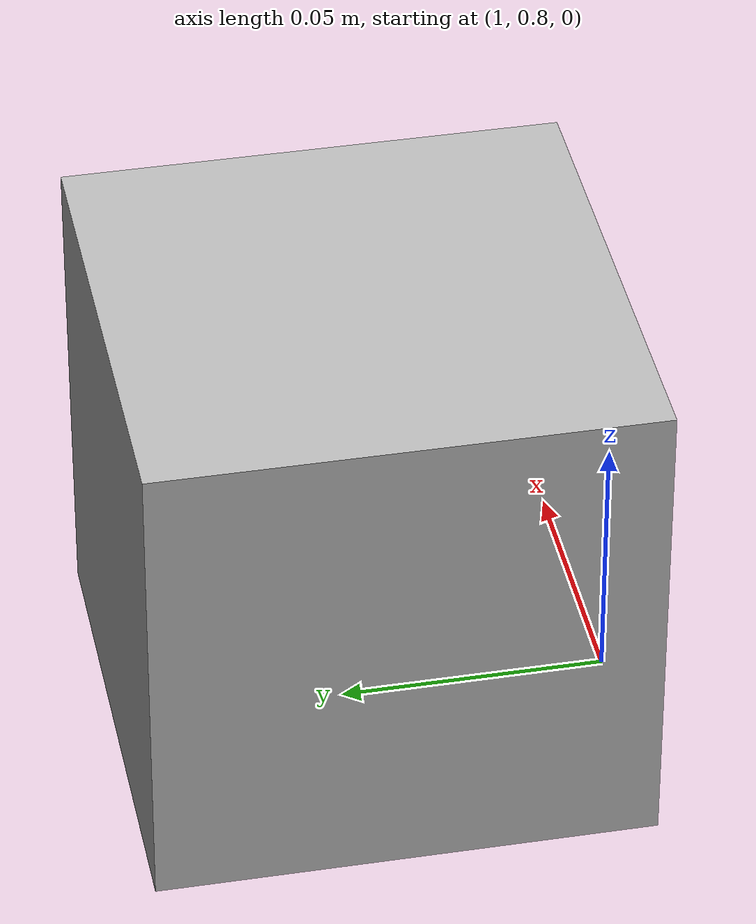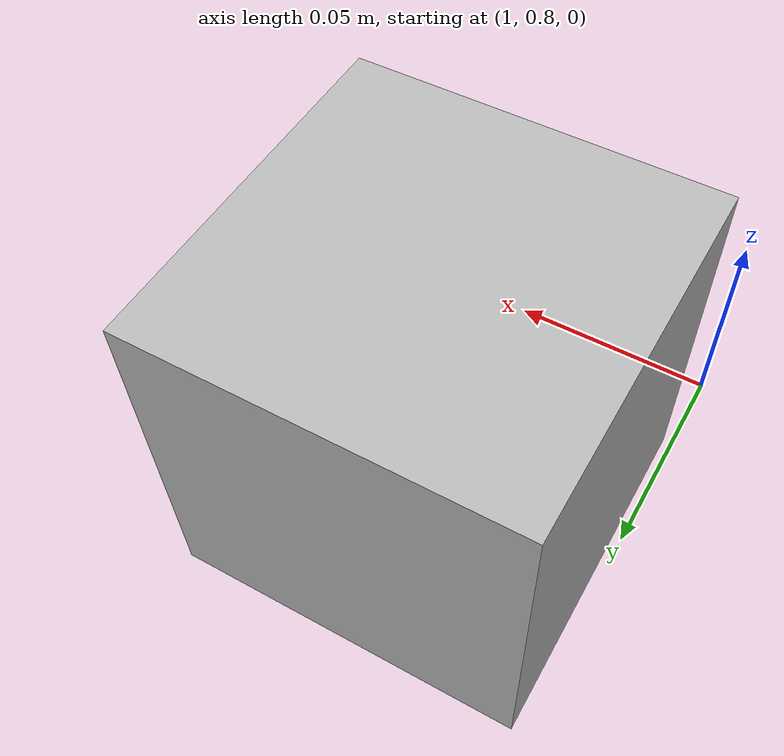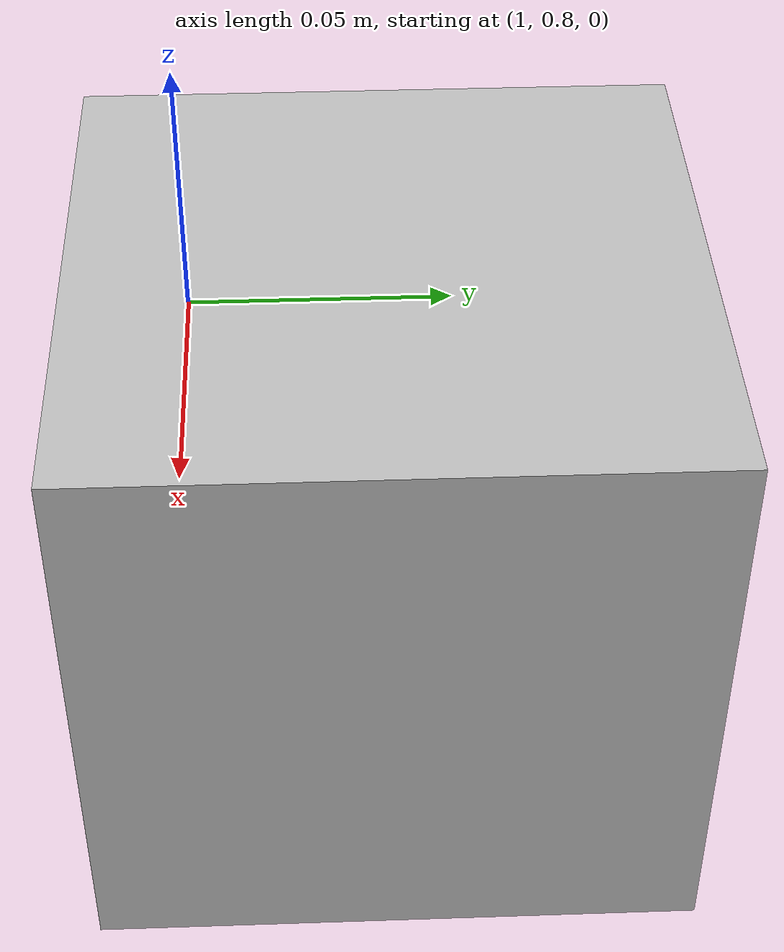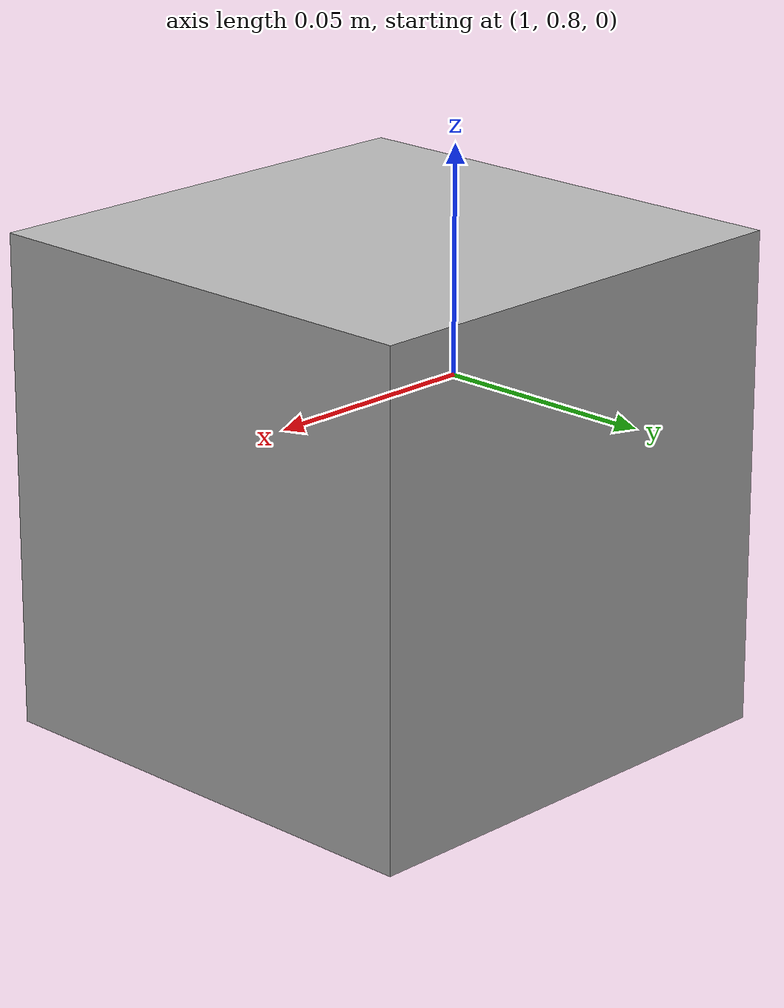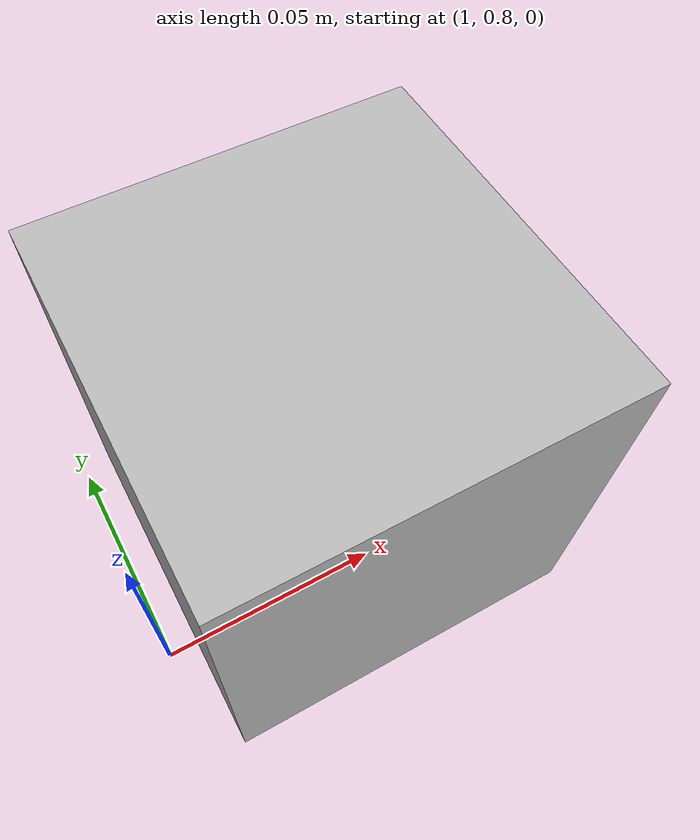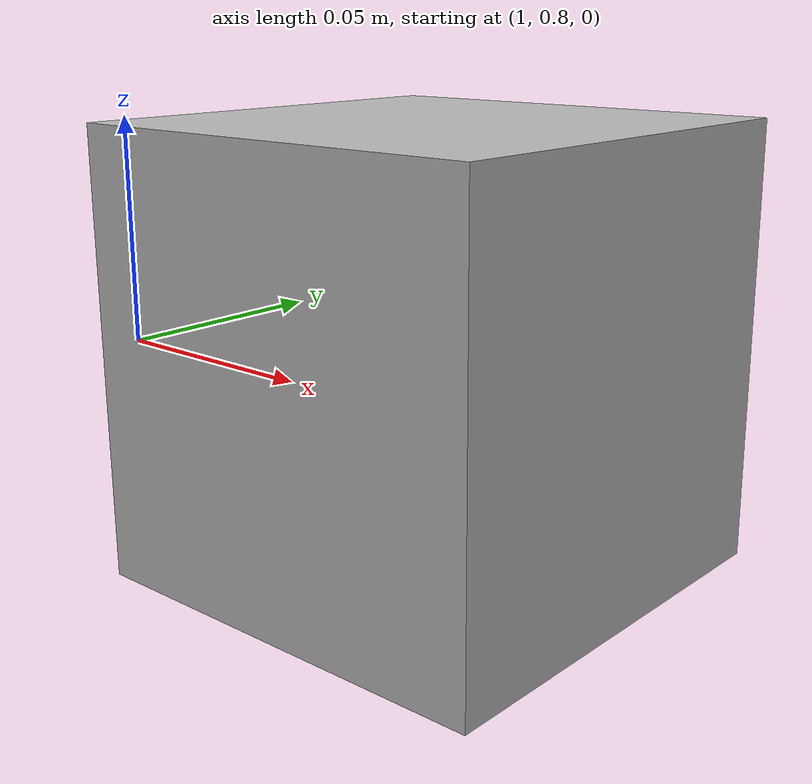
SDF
<?xml version='1.0'?>
<sdf version='1.6'>
  <model name='fiducial_cube'>
    <pose frame=''>1.05712 0.835513 0 0 -0 0</pose>
    <link name='cube'>
      <collision name='cube_collision'>
        <geometry>
          <box>
            <size>0.1 0.1 0.1</size>
          </box>
        </geometry>
        <pose frame=''>0 0 0 0 -0 0</pose>
      </collision>
      <visual name='cube_visual'>
        <pose frame=''>0 0 0 0 -0 0</pose>
        <geometry>
          <box>
            <size>0.1 0.1 0.1</size>
          </box>
        </geometry>
        <material>
          <script>
            <uri>models://fiducial_cube/materials/scripts</uri>
            <uri>models://fiducial_cube/materials/textures</uri>
            <name>fiducialMarker/Diffuse</name>
          </script>
        </material>
        <meta>
          <layer>0</layer>
        </meta>
      </visual>
      <pose frame=''>0 0 0 0 -0 0</pose>
    </link>
    <static>1</static>
  </model>
</sdf>
